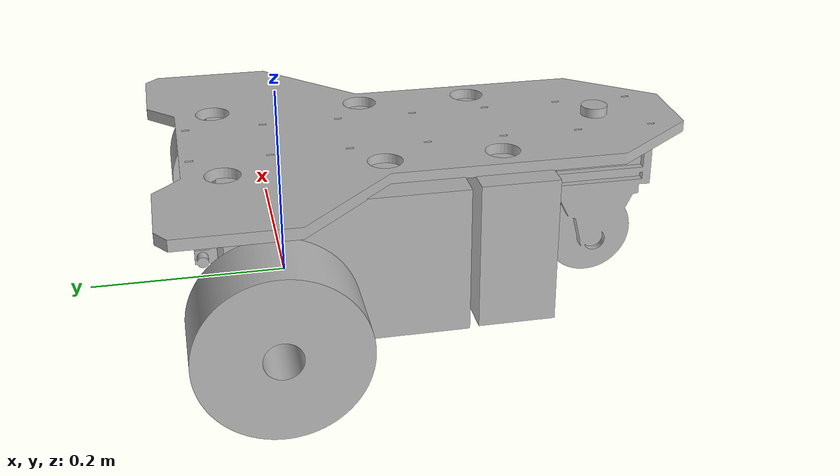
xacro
<?xml version="1.0" ?>
<robot name="innok" xmlns:xacro="http://www.ros.org/wiki/xacro">

<xacro:include filename="$(find innok_description)/urdf/materials.xacro" />
<xacro:include filename="$(find innok_description)/urdf/innok.trans" />
<xacro:include filename="$(find innok_description)/urdf/innok.gazebo" />
<link name="base_link">
  <inertial>
    <origin xyz="0.2974080430359136 -0.09395788555264112 -0.12078975186729625" rpy="0 0 0"/>
    <mass value="12.957373912333544"/>
    <inertia ixx="0.152252" iyy="0.111083" izz="0.241781" ixy="-0.016405" iyz="0.006506" ixz="0.008529"/>
  </inertial>
  <visual>
    <origin xyz="0 0 0" rpy="0 0 0"/>
    <geometry>
      <mesh filename="file://$(find innok_description)/meshes/base_link.stl" scale="0.001 0.001 0.001"/>
    </geometry>
    <material name="silver"/>
  </visual>
  <collision>
    <origin xyz="0 0 0" rpy="0 0 0"/>
    <geometry>
      <mesh filename="file://$(find innok_description)/meshes/base_link.stl" scale="0.001 0.001 0.001"/>
    </geometry>
  </collision>
</link>

<link name="driver_1_1_1_1_1_1_1">
  <inertial>
    <origin xyz="0.0 0.0499996988769717 0.031000000000000014" rpy="0 0 0"/>
    <mass value="50.17240768770195"/>
    <inertia ixx="0.200794" iyy="0.608148" izz="0.490974" ixy="-0.0" iyz="0.0" ixz="0.0"/>
  </inertial>
  <visual>
    <origin xyz="-0.32 0.35568 0.13" rpy="0 0 0"/>
    <geometry>
      <mesh filename="file://$(find innok_description)/meshes/driver_1_1_1_1_1_1_1.stl" scale="0.001 0.001 0.001"/>
    </geometry>
    <material name="silver"/>
  </visual>
  <collision>
    <origin xyz="-0.32 0.35568 0.13" rpy="0 0 0"/>
    <geometry>
      <mesh filename="file://$(find innok_description)/meshes/driver_1_1_1_1_1_1_1.stl" scale="0.001 0.001 0.001"/>
    </geometry>
  </collision>
</link>

<link name="charger_1_1_1_1_1_1_1">
  <inertial>
    <origin xyz="-4.672575242226085e-06 0.0862942619820953 0.03311136861462326" rpy="0 0 0"/>
    <mass value="145.14842696339159"/>
    <inertia ixx="1.569938" iyy="1.890326" izz="2.532494" ixy="0.000114" iyz="-0.015594" ixz="-1.1e-05"/>
  </inertial>
  <visual>
    <origin xyz="-0.32 0.180679 0.13" rpy="0 0 0"/>
    <geometry>
      <mesh filename="file://$(find innok_description)/meshes/charger_1_1_1_1_1_1_1.stl" scale="0.001 0.001 0.001"/>
    </geometry>
    <material name="silver"/>
  </visual>
  <collision>
    <origin xyz="-0.32 0.180679 0.13" rpy="0 0 0"/>
    <geometry>
      <mesh filename="file://$(find innok_description)/meshes/charger_1_1_1_1_1_1_1.stl" scale="0.001 0.001 0.001"/>
    </geometry>
  </collision>
</link>

<link name="topface_1_1_1_1_1_1_1">
  <inertial>
    <origin xyz="0.09680450975620933 -0.006250214465135462 0.06750108102149371" rpy="0 0 0"/>
    <mass value="25.02762851051116"/>
    <inertia ixx="0.921381" iyy="0.33928" izz="1.259723" ixy="0.002725" iyz="7e-06" ixz="-1e-06"/>
  </inertial>
  <visual>
    <origin xyz="-0.225 0.15 0.062501" rpy="0 0 0"/>
    <geometry>
      <mesh filename="file://$(find innok_description)/meshes/topface_1_1_1_1_1_1_1.stl" scale="0.001 0.001 0.001"/>
    </geometry>
    <material name="silver"/>
  </visual>
  <collision>
    <origin xyz="-0.225 0.15 0.062501" rpy="0 0 0"/>
    <geometry>
      <mesh filename="file://$(find innok_description)/meshes/topface_1_1_1_1_1_1_1.stl" scale="0.001 0.001 0.001"/>
    </geometry>
  </collision>
</link>

<link name="rightwheel_1_1_1_1_1_1_1">
  <inertial>
    <origin xyz="-0.04999999999999999 6.365927085732331e-08 -1.0905921193904433e-08" rpy="0 0 0"/>
    <mass value="25.7688037853274"/>
    <inertia ixx="0.149472" iyy="0.09621" izz="0.09621" ixy="0.0" iyz="0.0" ixz="-0.0"/>
  </inertial>
  <visual>
    <origin xyz="-0.12 -0.004381 0.129789" rpy="0 0 0"/>
    <geometry>
      <mesh filename="file://$(find innok_description)/meshes/rightwheel_1_1_1_1_1_1_1.stl" scale="0.001 0.001 0.001"/>
    </geometry>
    <material name="silver"/>
  </visual>
  <collision>
    <origin xyz="-0.12 -0.004381 0.129789" rpy="0 0 0"/>
    <geometry>
      <mesh filename="file://$(find innok_description)/meshes/rightwheel_1_1_1_1_1_1_1.stl" scale="0.001 0.001 0.001"/>
    </geometry>
  </collision>
</link>

<link name="leftwheel_1_1_1_1_1_1_1">
  <inertial>
    <origin xyz="0.050000000000000044 6.365927166657182e-08 -1.0905921249415584e-08" rpy="0 0 0"/>
    <mass value="25.7688037853274"/>
    <inertia ixx="0.149472" iyy="0.09621" izz="0.09621" ixy="-0.0" iyz="-0.0" ixz="-0.0"/>
  </inertial>
  <visual>
    <origin xyz="-0.52 -0.004381 0.129789" rpy="0 0 0"/>
    <geometry>
      <mesh filename="file://$(find innok_description)/meshes/leftwheel_1_1_1_1_1_1_1.stl" scale="0.001 0.001 0.001"/>
    </geometry>
    <material name="silver"/>
  </visual>
  <collision>
    <origin xyz="-0.52 -0.004381 0.129789" rpy="0 0 0"/>
    <geometry>
      <mesh filename="file://$(find innok_description)/meshes/leftwheel_1_1_1_1_1_1_1.stl" scale="0.001 0.001 0.001"/>
    </geometry>
  </collision>
</link>

<link name="frontwheelholder_1_1_1_1_1_1_1">
  <inertial>
    <origin xyz="0.0008961677494441767 -0.00038983819573679135 -0.0888252580380676" rpy="0 0 0"/>
    <mass value="10.000875099038883"/>
    <inertia ixx="0.040521" iyy="0.03414" izz="0.015364" ixy="1.7e-05" iyz="0.00016" ixz="0.000169"/>
  </inertial>
  <visual>
    <origin xyz="-0.321653 0.450939 -0.012499" rpy="0 0 0"/>
    <geometry>
      <mesh filename="file://$(find innok_description)/meshes/frontwheelholder_1_1_1_1_1_1_1.stl" scale="0.001 0.001 0.001"/>
    </geometry>
    <material name="silver"/>
  </visual>
  <collision>
    <origin xyz="-0.321653 0.450939 -0.012499" rpy="0 0 0"/>
    <geometry>
      <mesh filename="file://$(find innok_description)/meshes/frontwheelholder_1_1_1_1_1_1_1.stl" scale="0.001 0.001 0.001"/>
    </geometry>
  </collision>
</link>

<joint name="Rigid 70" type="fixed">
  <origin xyz="0.32 -0.35568 -0.13" rpy="0 0 0"/>
  <parent link="base_link"/>
  <child link="driver_1_1_1_1_1_1_1"/>
</joint>

<joint name="Rigid 71" type="fixed">
  <origin xyz="0.32 -0.180679 -0.13" rpy="0 0 0"/>
  <parent link="base_link"/>
  <child link="charger_1_1_1_1_1_1_1"/>
</joint>

<joint name="Rigid 72" type="fixed">
  <origin xyz="0.225 -0.15 -0.062501" rpy="0 0 0"/>
  <parent link="base_link"/>
  <child link="topface_1_1_1_1_1_1_1"/>
</joint>

<joint name="LEFT WHEEL" type="fixed">
  <origin xyz="0.12 0.004381 -0.129789" rpy="0 0 0"/>
  <parent link="base_link"/>
  <child link="rightwheel_1_1_1_1_1_1_1"/>
</joint>

<joint name="RIGHT WHEEL" type="fixed">
  <origin xyz="0.52 0.004381 -0.129789" rpy="0 0 0"/>
  <parent link="base_link"/>
  <child link="leftwheel_1_1_1_1_1_1_1"/>
</joint>

<joint name="FRONT WHEEL" type="continuous">
  <origin xyz="0.096653 -0.300939 0.075" rpy="0 0 0"/>
  <parent link="topface_1_1_1_1_1_1_1"/>
  <child link="frontwheelholder_1_1_1_1_1_1_1"/>
  <axis xyz="0 0 1"/>
</joint>

</robot>

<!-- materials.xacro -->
<robot name="innok" xmlns:xacro="http://www.ros.org/wiki/xacro" >

<material name="silver">
  <color rgba="0.700 0.700 0.700 1.000"/>
</material>

</robot>

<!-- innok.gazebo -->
<robot name="innok" xmlns:xacro="http://www.ros.org/wiki/xacro" >

<xacro:property name="body_color" value="Gazebo/Silver" />

<gazebo>
  <plugin name="control" filename="libgazebo_ros_control.so"/>
</gazebo>
<gazebo reference="base_link">
  <material>${body_color}</material>
  <mu1>0.2</mu1>
  <mu2>0.2</mu2>
  <self_collide>true</self_collide>
  <gravity>true</gravity>
</gazebo>

<gazebo reference="driver_1_1_1_1_1_1_1">
  <material>${body_color}</material>
  <mu1>0.2</mu1>
  <mu2>0.2</mu2>
  <self_collide>true</self_collide>
</gazebo>

<gazebo reference="charger_1_1_1_1_1_1_1">
  <material>${body_color}</material>
  <mu1>0.2</mu1>
  <mu2>0.2</mu2>
  <self_collide>true</self_collide>
</gazebo>

<gazebo reference="topface_1_1_1_1_1_1_1">
  <material>${body_color}</material>
  <mu1>0.2</mu1>
  <mu2>0.2</mu2>
  <self_collide>true</self_collide>
</gazebo>

<gazebo reference="rightwheel_1_1_1_1_1_1_1">
  <material>${body_color}</material>
  <mu1>0.2</mu1>
  <mu2>0.2</mu2>
  <self_collide>true</self_collide>
</gazebo>

<gazebo reference="leftwheel_1_1_1_1_1_1_1">
  <material>${body_color}</material>
  <mu1>0.2</mu1>
  <mu2>0.2</mu2>
  <self_collide>true</self_collide>
</gazebo>

<gazebo reference="frontwheelholder_1_1_1_1_1_1_1">
  <material>${body_color}</material>
  <mu1>0.2</mu1>
  <mu2>0.2</mu2>
  <self_collide>true</self_collide>
</gazebo>

</robot>
